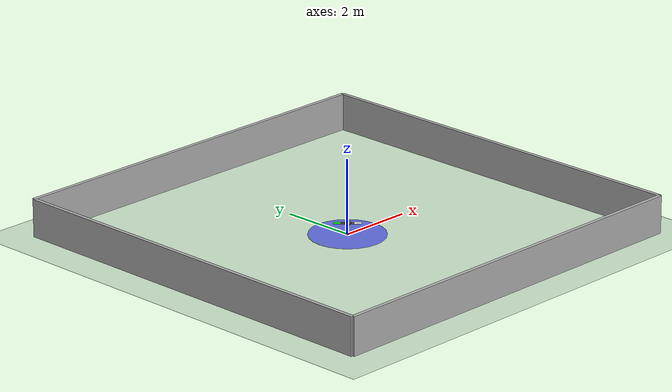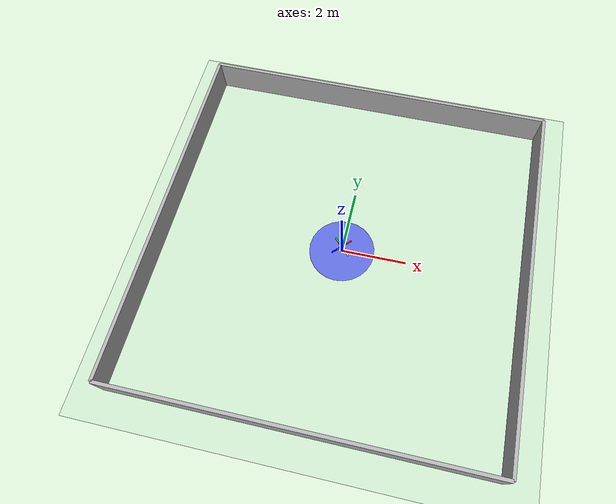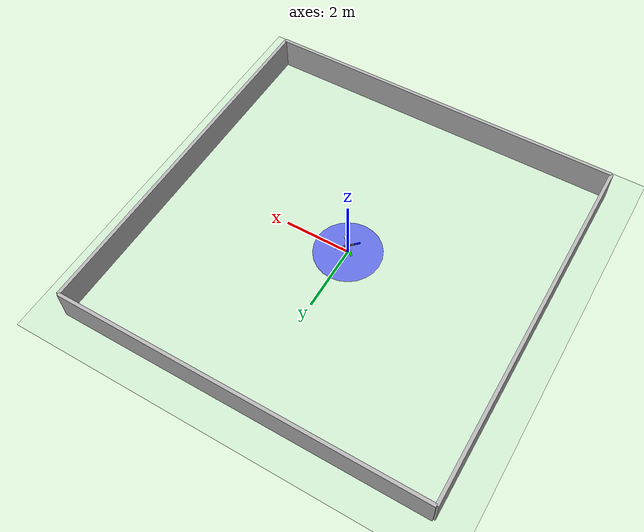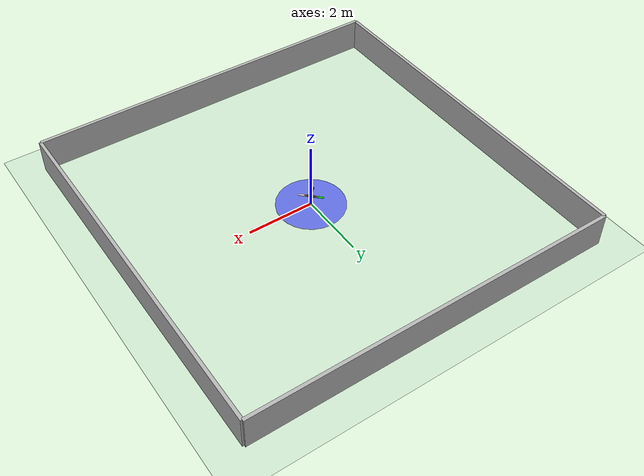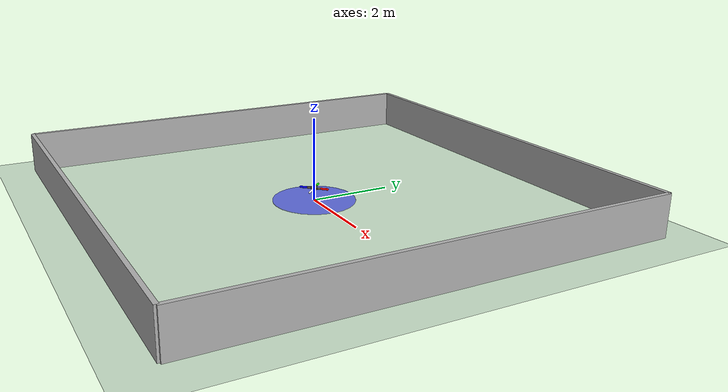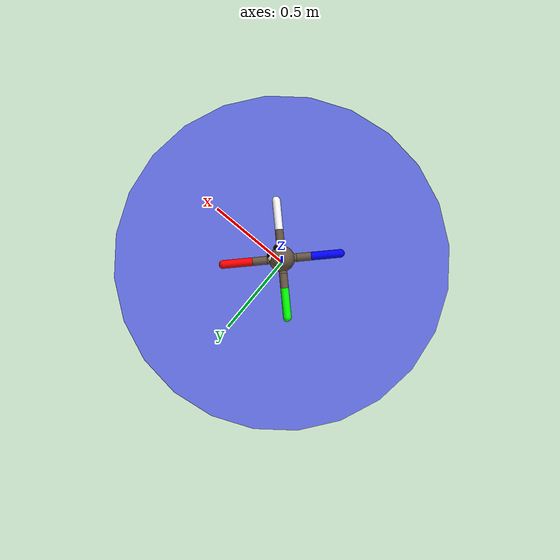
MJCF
<mujoco model="ant">
  <compiler angle="radian" coordinate="local" inertiafromgeom="true"/>
  <option iterations="3" ls_iterations="5" timestep="0.001" integrator="Euler">
    <flag eulerdamp="disable"/>
  </option>
  <default>
    <joint limited="true" damping="0.1"/>
    <geom friction="0.6 0.001 0.001" rgba="0.4 0.33 0.26 1.0"/>
  </default>
  <asset>
    <texture builtin="gradient" height="100" rgb1="1 1 1" rgb2="0 0 0" type="skybox" width="100"/>
    <texture builtin="flat" height="1278" mark="cross" markrgb="1 1 1" name="texgeom" random="0.01" rgb1="0.8 0.6 0.4" rgb2="0.8 0.6 0.4" type="cube" width="127"/>
    <texture builtin="checker" height="100" name="texplane" rgb1="0 0 0" rgb2="0.1 0.1 0.1" type="2d" width="100"/>
    <material name="MatPlane" texrepeat="60 60" texture="texplane"/>
    <material name="geom" texture="texgeom" texuniform="true"/>
  </asset>
  <sensor>
    <gyro name="gyro" site="imu_location" />
    <accelerometer name="accelerometer" site="imu_location" />
    <framezaxis objtype="site" objname="imu_location" name="upvector"/>

  </sensor>

   <worldbody>
    <light cutoff="100" diffuse="1 1 1" dir="-0 0 -1.3" directional="true" exponent="1" pos="0 0 1.3" specular=".1 .1 .1"/>
    <geom conaffinity="1" condim="3" material="MatPlane" name="floor" pos="0 0 0" rgba="0.8 0.9 0.8 1" size="40 40 40" type="plane" friction="0.6"/>
    <!-- 3D Axis Markers as Cylinders (X: red, Y: green, Z: blue) -->
    <geom name="x_axis" type="cylinder" fromto="0 0 0 0.3 0 0" size="0.01" rgba="1 0 0 1" contype="0" conaffinity="0"/>
    <geom name="y_axis" type="cylinder" fromto="0 0 0 0 0.3 0" size="0.01" rgba="0 1 0 1" contype="0" conaffinity="0"/>
    <geom name="z_axis" type="cylinder" fromto="0 0 0 0 0 0.3" size="0.01" rgba="0 0 1 1" contype="0" conaffinity="0"/>

    <!-- Arena boundary walls -->
    <geom name="north_wall" type="box" pos="0 5.5 0.5" size="5.5 0.05 0.5" rgba="0.7 0.7 0.7 1"/>
    <geom name="south_wall" type="box" pos="0 -5.5 0.5" size="5.5 0.05 0.5" rgba="0.7 0.7 0.7 1"/>
    <geom name="east_wall" type="box" pos="5.5 0 0.5" size="0.05 5.5 0.5" rgba="0.7 0.7 0.7 1"/>
    <geom name="west_wall" type="box" pos="-5.5 0 0.5" size="0.05 5.5 0.5" rgba="0.7 0.7 0.7 1"/>

    <geom name="boundary" type="cylinder" pos="0 0 0.01" size="1 0.01" rgba="0 0 1 0.5" contype="0" conaffinity="0"/>

    <body name="torso" pos="0 0 0.3">
      <camera name="track" mode="trackcom" pos="0 -4.0 0.6" xyaxes="1 0 0 0 0 1"/>
      <geom name="torso_geom" pos="0 0 0" size="0.075" type="sphere" mass="0.284"/>
      <joint armature="0" damping="0" limited="false" margin="0.01" name="root" pos="0 0 0" type="free"/>
      <site name="imu_location" pos="0 0 0" euler="0 0 0" size="0.01" type="sphere" rgba="1 0 0 1"/>
      <site name="left_eye" pos="0.05 0.03 0.02" size="0.025" type="sphere" rgba="1 1 1 1"/>
      <site name="right_eye" pos="0.05 -0.03 0.02" size="0.025" type="sphere" rgba="1 1 1 1"/>
      <site name="left_pupil" pos="0.06 0.03 0.02" size="0.022" type="sphere" rgba="0 0 0 1"/>
      <site name="right_pupil" pos="0.06 -0.03 0.02" size="0.022" type="sphere" rgba="0 0 0 1"/>

      <body name="rear_right_leg" pos="0 0 0">
        <geom fromto="0.0 0.0 0.0 -0.06 -0.06 0.0" name="rear_right_leg_geom" size="0.024" type="capsule" mass="0.058"/>
        <body name="aux_3" pos="-0.06 -0.06 0">
          <joint axis="0 0 1" name="hip_rr" pos="0.0 0.0 0.0" range="-0.785 0.785" type="hinge"/>
          <geom fromto="0.0 0.0 0.0 -0.06 -0.06 0.0" name="rear_right_upper_leg_geom" size="0.024" type="capsule" mass="0.076"/>
          <body pos="-0.06 -0.06 0">
            <joint axis="-1 1 0" name="knee_rr" pos="0.0 0.0 0.0" range="-1.22 1.22" type="hinge"/>
            <geom fromto="0.0 0.0 0.0 -0.12 -0.12 0.0" name="rear_right_lower_leg_geom" size="0.024" type="capsule" mass="0.030" rgba="0 0 1 1"/>
          </body>
        </body>
      </body>

      <body name="front_right_leg" pos="0 0 0">
        <geom fromto="0.0 0.0 0.0 0.06 -0.06 0.0" name="front_right_leg_geom" size="0.024" type="capsule" mass="0.058"/>
        <body name="aux_4" pos="0.06 -0.06 0">
          <joint axis="0 0 1" name="hip_fr" pos="0.0 0.0 0.0" range="-0.785 0.785" type="hinge"/>
          <geom fromto="0.0 0.0 0.0 0.06 -0.06 0.0" name="front_right_upper_leg_geom" size="0.024" type="capsule" mass="0.076"/>
          <body pos="0.06 -0.06 0">
            <joint axis="-1 -1 0" name="knee_fr" pos="0.0 0.0 0.0" range="-1.22 1.22" type="hinge"/>
            <geom fromto="0.0 0.0 0.0 0.12 -0.12 0.0" name="front_right_lower_leg_geom" size="0.024" type="capsule" mass="0.030" rgba="1 1 1 1"/>
          </body>
        </body>
      </body>

      <body name="front_left_leg" pos="0 0 0">
        <geom fromto="0.0 0.0 0.0 0.06 0.06 0.0" name="front_left_leg_geom" size="0.024" type="capsule" mass="0.058"/>
        <body name="aux_1" pos="0.06 0.06 0">
          <joint axis="0 0 1" name="hip_fl" pos="0.0 0.0 0.0" range="-0.785 0.785" type="hinge"/>
          <geom fromto="0.0 0.0 0.0 0.06 0.06 0.0" name="front_left_upper_leg_geom" size="0.024" type="capsule" mass="0.076"/>
          <body pos="0.06 0.06 0">
            <joint axis="1 -1 0" name="knee_fl" pos="0.0 0.0 0.0" range="-1.22 1.22" type="hinge"/>
            <geom fromto="0.0 0.0 0.0 0.12 0.12 0.0" name="front_left_lower_leg_geom" size="0.024" type="capsule" mass="0.030" rgba="1 0 0 1"/>
          </body>
        </body>
      </body>

      <body name="rear_left_leg" pos="0 0 0">
        <geom fromto="0.0 0.0 0.0 -0.06 0.06 0.0" name="rear_left_leg_geom" size="0.024" type="capsule" mass="0.058"/>
        <body name="aux_2" pos="-0.06 0.06 0">
          <joint axis="0 0 1" name="hip_rl" pos="0.0 0.0 0.0" range="-0.785 0.785" type="hinge"/>
          <geom fromto="0.0 0.0 0.0 -0.06 0.06 0.0" name="rear_leg_upper_leg_geom" size="0.024" type="capsule" mass="0.076"/>
          <body pos="-0.06 0.06 0">
            <joint axis="1 1 0" name="knee_rl" pos="0.0 0.0 0.0" range="-1.22 1.22" type="hinge"/>
            <geom fromto="0.0 0.0 0.0 -0.12 0.12 0.0" name="rear_left_lower_leg_geom" size="0.024" type="capsule" mass="0.030" rgba="0 1 0 1"/>
          </body>
        </body>
      </body>

    </body>
  </worldbody>
  <actuator>
    <position joint="hip_rr" kp="3.0" kv="0.1"/>
    <position joint="knee_rr" kp="3.0" kv="0.1"/>
    <position joint="hip_fr" kp="3.0" kv="0.1"/>
    <position joint="knee_fr" kp="3.0" kv="0.1"/>
    <position joint="hip_fl" kp="3.0" kv="0.1"/>
    <position joint="knee_fl" kp="3.0" kv="0.1"/>
    <position joint="hip_rl" kp="3.0" kv="0.1"/>
    <position joint="knee_rl" kp="3.0" kv="0.1"/>
  </actuator>

</mujoco>
